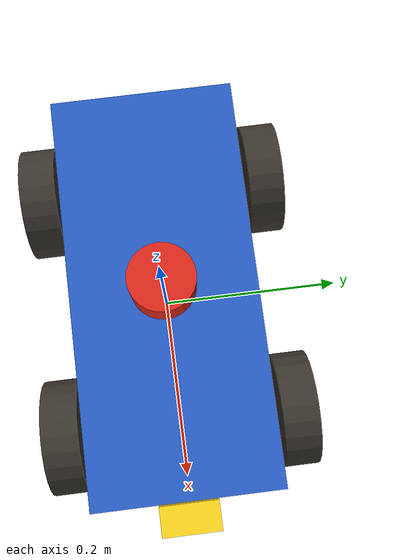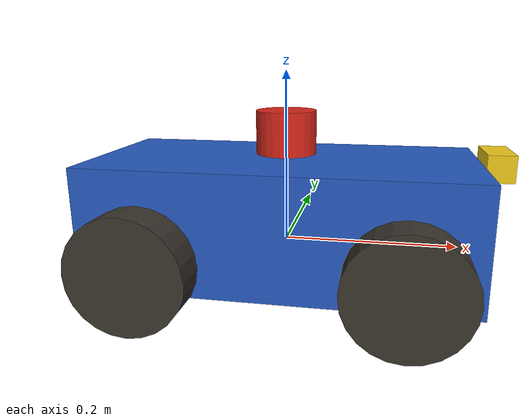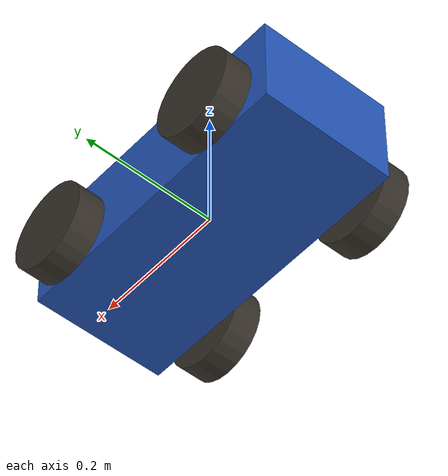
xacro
<?xml version="1.0"?>
<robot name="ackermann_car" xmlns:xacro="http://www.ros.org/wiki/xacro">

  <!-- controllers.yaml 경로 — launch 파일에서 절대 경로로 주입 -->
  <xacro:arg name="controllers_yaml" default=""/>

  <!-- ============================================================
       Properties
  ============================================================ -->
  <xacro:property name="wheel_r"      value="0.065"/>
  <xacro:property name="wheel_w"      value="0.040"/>
  <xacro:property name="wheelbase"    value="0.280"/>
  <xacro:property name="track"        value="0.260"/>
  <xacro:property name="body_l"       value="0.440"/>
  <xacro:property name="body_w"       value="0.200"/>
  <xacro:property name="body_h"       value="0.140"/>
  <xacro:property name="chassis_mass" value="1.5"/>
  <xacro:property name="wheel_mass"   value="0.1"/>

  <!-- ============================================================
       base_footprint  (ground projection, child of base_link)
  ============================================================ -->
  <link name="base_footprint"/>

  <joint name="base_footprint_joint" type="fixed">
    <parent link="base_link"/>
    <child  link="base_footprint"/>
    <origin xyz="0 0 ${-wheel_r}" rpy="0 0 0"/>
  </joint>

  <link name="base_link">
    <visual>
      <origin xyz="0 0 0.03" rpy="0 0 0"/>
      <geometry><box size="${body_l} ${body_w} ${body_h}"/></geometry>
      <material name="chassis_blue"><color rgba="0.15 0.35 0.75 1.0"/></material>
    </visual>
    <collision>
      <origin xyz="0 0 0.03" rpy="0 0 0"/>
      <geometry><box size="${body_l} ${body_w} ${body_h}"/></geometry>
    </collision>
    <inertial>
      <mass value="${chassis_mass}"/>
      <inertia ixx="0.006" ixy="0" ixz="0"
               iyy="0.025" iyz="0"
               izz="0.030"/>
    </inertial>
  </link>

  <!-- ============================================================
       Wheel macro  (cylinder, rolling axis = local Y)
  ============================================================ -->
  <xacro:macro name="wheel_link" params="name">
    <link name="${name}">
      <visual>
        <origin xyz="0 0 0" rpy="${pi/2} 0 0"/>
        <geometry><cylinder radius="${wheel_r}" length="${wheel_w}"/></geometry>
        <material name="wheel_rubber"><color rgba="0.22 0.20 0.17 1.0"/></material>
      </visual>
      <collision>
        <origin xyz="0 0 0" rpy="${pi/2} 0 0"/>
        <geometry><cylinder radius="${wheel_r}" length="${wheel_w}"/></geometry>
      </collision>
      <inertial>
        <mass value="${wheel_mass}"/>
        <inertia ixx="0.000120" ixy="0" ixz="0"
                 iyy="0.000211" iyz="0"
                 izz="0.000120"/>
      </inertial>
    </link>
  </xacro:macro>

  <!-- Front-Left -->
  <joint name="front_left_steer_joint" type="revolute">
    <parent link="base_link"/>
    <child  link="front_left_steer_link"/>
    <origin xyz="${wheelbase/2} ${track/2} 0" rpy="0 0 0"/>
    <axis xyz="0 0 1"/>
    <limit lower="-0.50" upper="0.50" effort="5" velocity="2"/>
    <dynamics damping="0.1"/>
  </joint>

  <link name="front_left_steer_link">
    <inertial>
      <mass value="0.05"/>
      <inertia ixx="5e-6" ixy="0" ixz="0" iyy="5e-6" iyz="0" izz="5e-6"/>
    </inertial>
  </link>

  <joint name="front_left_wheel_joint" type="continuous">
    <parent link="front_left_steer_link"/>
    <child  link="front_left_wheel"/>
    <origin xyz="0 0 0" rpy="0 0 0"/>
    <axis xyz="0 1 0"/>
    <limit effort="10.0" velocity="15.0"/>
    <dynamics damping="0.01"/>
  </joint>
  <xacro:wheel_link name="front_left_wheel"/>

  <!-- Front-Right -->
  <joint name="front_right_steer_joint" type="revolute">
    <parent link="base_link"/>
    <child  link="front_right_steer_link"/>
    <origin xyz="${wheelbase/2} ${-track/2} 0" rpy="0 0 0"/>
    <axis xyz="0 0 1"/>
    <limit lower="-0.50" upper="0.50" effort="5" velocity="2"/>
    <dynamics damping="0.1"/>
  </joint>

  <link name="front_right_steer_link">
    <inertial>
      <mass value="0.05"/>
      <inertia ixx="5e-6" ixy="0" ixz="0" iyy="5e-6" iyz="0" izz="5e-6"/>
    </inertial>
  </link>

  <joint name="front_right_wheel_joint" type="continuous">
    <parent link="front_right_steer_link"/>
    <child  link="front_right_wheel"/>
    <origin xyz="0 0 0" rpy="0 0 0"/>
    <axis xyz="0 1 0"/>
    <limit effort="10.0" velocity="15.0"/>
    <dynamics damping="0.01"/>
  </joint>
  <xacro:wheel_link name="front_right_wheel"/>

  <!-- Rear-Left -->
  <joint name="rear_left_wheel_joint" type="continuous">
    <parent link="base_link"/>
    <child  link="rear_left_wheel"/>
    <origin xyz="${-wheelbase/2} ${track/2} 0" rpy="0 0 0"/>
    <axis xyz="0 1 0"/>
    <limit effort="10.0" velocity="15.0"/>
    <dynamics damping="0.01"/>
  </joint>
  <xacro:wheel_link name="rear_left_wheel"/>

  <!-- Rear-Right -->
  <joint name="rear_right_wheel_joint" type="continuous">
    <parent link="base_link"/>
    <child  link="rear_right_wheel"/>
    <origin xyz="${-wheelbase/2} ${-track/2} 0" rpy="0 0 0"/>
    <axis xyz="0 1 0"/>
    <limit effort="10.0" velocity="15.0"/>
    <dynamics damping="0.01"/>
  </joint>
  <xacro:wheel_link name="rear_right_wheel"/>

  <!-- ============================================================
       LiDAR — roof centre
  ============================================================ -->
  <joint name="lidar_joint" type="fixed">
    <parent link="base_link"/>
    <child  link="lidar_link"/>
    <!-- wheel_r=0.065 이므로 0.13m 이상이어야 휠 상단 위를 스캔 -->
    <origin xyz="0 0 0.13" rpy="0 0 0"/>
  </joint>

  <link name="lidar_link">
    <visual>
      <origin xyz="0 0 0" rpy="0 0 0"/>
      <geometry><cylinder radius="0.035" length="0.050"/></geometry>
      <material name="lidar_red"><color rgba="0.85 0.15 0.10 1.0"/></material>
    </visual>
    <collision>
      <origin xyz="0 0 0" rpy="0 0 0"/>
      <geometry><cylinder radius="0.035" length="0.050"/></geometry>
    </collision>
    <inertial>
      <mass value="0.05"/>
      <inertia ixx="1e-5" ixy="0" ixz="0" iyy="1e-5" iyz="0" izz="1e-5"/>
    </inertial>
  </link>

  <!-- ============================================================
       Camera — front face of chassis
  ============================================================ -->
  <joint name="camera_joint" type="fixed">
    <parent link="base_link"/>
    <child  link="camera_link"/>
    <origin xyz="${body_l/2 + 0.015} 0 0.10" rpy="0 0 0"/>
  </joint>

  <link name="camera_link">
    <visual>
      <origin xyz="0 0 0" rpy="0 0 0"/>
      <geometry><box size="0.030 0.060 0.030"/></geometry>
      <material name="camera_yellow"><color rgba="0.95 0.80 0.10 1.0"/></material>
    </visual>
    <inertial>
      <mass value="0.02"/>
      <inertia ixx="1e-6" ixy="0" ixz="0" iyy="1e-6" iyz="0" izz="1e-6"/>
    </inertial>
  </link>

  <joint name="camera_optical_joint" type="fixed">
    <parent link="camera_link"/>
    <child  link="camera_optical_frame"/>
    <origin xyz="0 0 0" rpy="${-pi/2} 0 ${-pi/2}"/>
  </joint>
  <link name="camera_optical_frame"/>

  <gazebo reference="base_link">
    <material>Gazebo/Blue</material>
  </gazebo>
  <gazebo reference="front_left_steer_link">
    <material>Gazebo/Grey</material>
  </gazebo>
  <gazebo reference="front_right_steer_link">
    <material>Gazebo/Grey</material>
  </gazebo>
  <gazebo reference="lidar_link">
    <material>Gazebo/Red</material>
  </gazebo>
  <gazebo reference="camera_link">
    <material>Gazebo/Yellow</material>
  </gazebo>

  <!-- ============================================================
       Wheel physics + 색상
  ============================================================ -->
  <xacro:macro name="wheel_physics" params="link">
    <gazebo reference="${link}">
      <!-- 고무 타이어: 다크 챠콜 + 극저 specular(무광) + 약간 warm 브라운 톤 -->
      <visual>
        <material>
          <ambient>0.12 0.11 0.09 1.0</ambient>
          <diffuse>0.22 0.20 0.17 1.0</diffuse>
          <specular>0.02 0.02 0.02 1.0</specular>
          <emissive>0.0 0.0 0.0 1.0</emissive>
        </material>
      </visual>
      <mu1>1.0</mu1>
      <mu2>1.0</mu2>
      <kp>1000000.0</kp>
      <kd>1.0</kd>
      <minDepth>0.001</minDepth>
      <maxVel>1.0</maxVel>
      <fdir1>1 0 0</fdir1>
    </gazebo>
  </xacro:macro>

  <xacro:wheel_physics link="front_left_wheel"/>
  <xacro:wheel_physics link="front_right_wheel"/>
  <xacro:wheel_physics link="rear_left_wheel"/>
  <xacro:wheel_physics link="rear_right_wheel"/>

  <!-- ============================================================
       2-D LiDAR (360°)
  ============================================================ -->
  <gazebo reference="lidar_link">
    <sensor type="ray" name="lidar_sensor">
      <pose>0 0 0 0 0 0</pose>
      <always_on>true</always_on>
      <update_rate>10</update_rate>
      <visualize>false</visualize>
      <ray>
        <scan>
          <horizontal>
            <samples>360</samples>
            <resolution>1</resolution>
            <min_angle>-3.14159</min_angle>
            <max_angle>3.14159</max_angle>
          </horizontal>
        </scan>
        <range>
          <min>0.10</min><max>10.0</max><resolution>0.01</resolution>
        </range>
        <noise><type>gaussian</type><mean>0.0</mean><stddev>0.01</stddev></noise>
      </ray>
      <plugin name="lidar_plugin" filename="libgazebo_ros_ray_sensor.so">
        <ros><remapping>~/out:=scan</remapping></ros>
        <output_type>sensor_msgs/LaserScan</output_type>
        <frame_name>lidar_link</frame_name>
      </plugin>
    </sensor>
  </gazebo>

  <!-- ============================================================
       RGB Camera (640x480)
  ============================================================ -->
  <gazebo reference="camera_link">
    <sensor type="camera" name="camera_sensor">
      <always_on>true</always_on>
      <update_rate>30</update_rate>
      <visualize>false</visualize>
      <camera name="front_camera">
        <horizontal_fov>1.5708</horizontal_fov>
        <image><width>640</width><height>480</height><format>R8G8B8</format></image>
        <clip><near>0.05</near><far>20.0</far></clip>
        <noise><type>gaussian</type><mean>0.0</mean><stddev>0.005</stddev></noise>
      </camera>
      <plugin name="camera_plugin" filename="libgazebo_ros_camera.so">
        <ros>
          <remapping>image_raw:=camera/image_raw</remapping>
          <remapping>camera_info:=camera/camera_info</remapping>
        </ros>
        <camera_name>front_camera</camera_name>
        <frame_name>camera_optical_frame</frame_name>
      </plugin>
    </sensor>
  </gazebo>

  <!-- ============================================================
       ros2_control hardware interface
  ============================================================ -->
  <ros2_control name="GazeboSystem" type="system">
    <hardware>
      <plugin>gazebo_ros2_control/GazeboSystem</plugin>
    </hardware>

    <!-- 앞바퀴 조향: position 명령 -->
    <joint name="front_left_steer_joint">
      <command_interface name="position">
        <param name="min">-0.5</param>
        <param name="max">0.5</param>
      </command_interface>
      <state_interface name="position"/>
      <state_interface name="velocity"/>
    </joint>
    <joint name="front_right_steer_joint">
      <command_interface name="position">
        <param name="min">-0.5</param>
        <param name="max">0.5</param>
      </command_interface>
      <state_interface name="position"/>
      <state_interface name="velocity"/>
    </joint>

    <!-- 앞바퀴 휠: passive (state만, 오도메트리용) -->
    <joint name="front_left_wheel_joint">
      <state_interface name="position"/>
      <state_interface name="velocity"/>
    </joint>
    <joint name="front_right_wheel_joint">
      <state_interface name="position"/>
      <state_interface name="velocity"/>
    </joint>

    <joint name="rear_left_wheel_joint">
      <param name="vel_kp">0.1</param>
      <param name="vel_ki">0.0</param>
      <param name="vel_kd">0.0</param>
      <command_interface name="velocity">
        <param name="min">-15</param>
        <param name="max">15</param>
      </command_interface>
      <state_interface name="position"/>
      <state_interface name="velocity"/>
    </joint>
    <joint name="rear_right_wheel_joint">
      <param name="vel_kp">0.1</param>
      <param name="vel_ki">0.0</param>
      <param name="vel_kd">0.0</param>
      <command_interface name="velocity">
        <param name="min">-15</param>
        <param name="max">15</param>
      </command_interface>
      <state_interface name="position"/>
      <state_interface name="velocity"/>
    </joint>
  </ros2_control>

  <!-- ============================================================
       gazebo_ros2_control 플러그인
  ============================================================ -->
  <gazebo>
    <plugin filename="libgazebo_ros2_control.so" name="gazebo_ros2_control">
      <parameters>$(arg controllers_yaml)</parameters>
    </plugin>
  </gazebo>

</robot>
